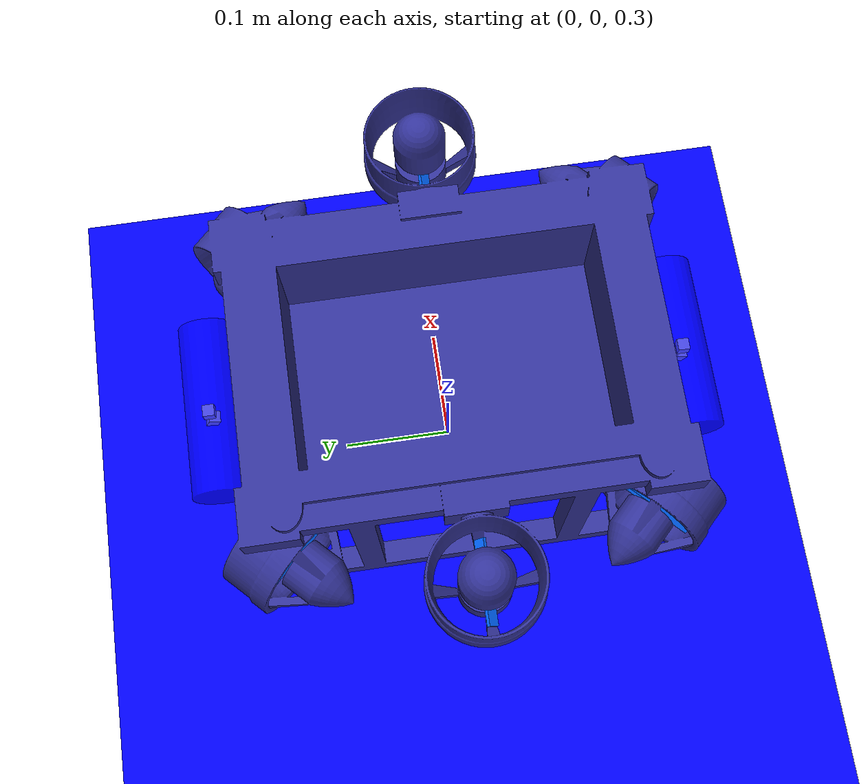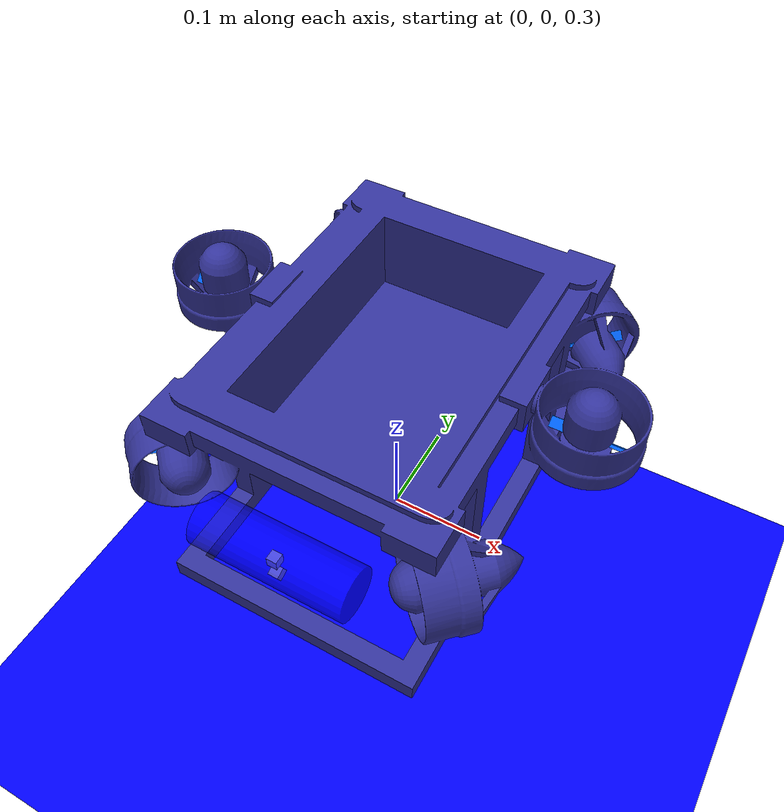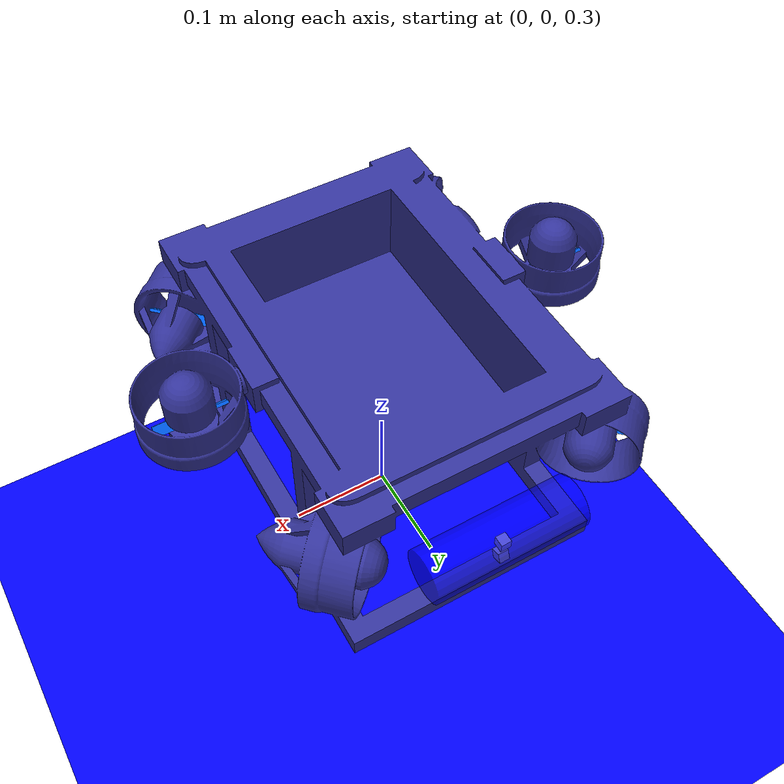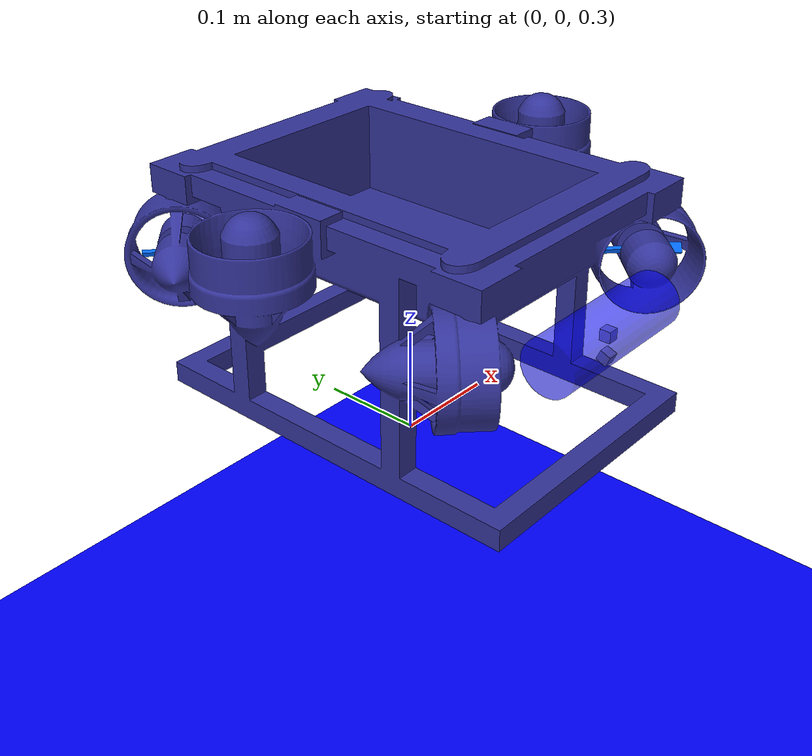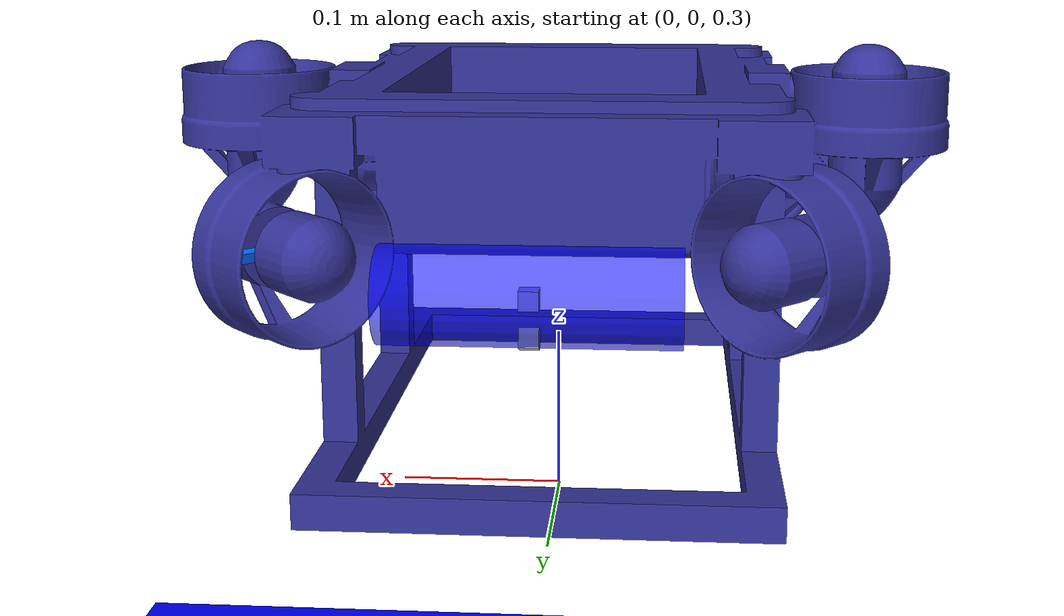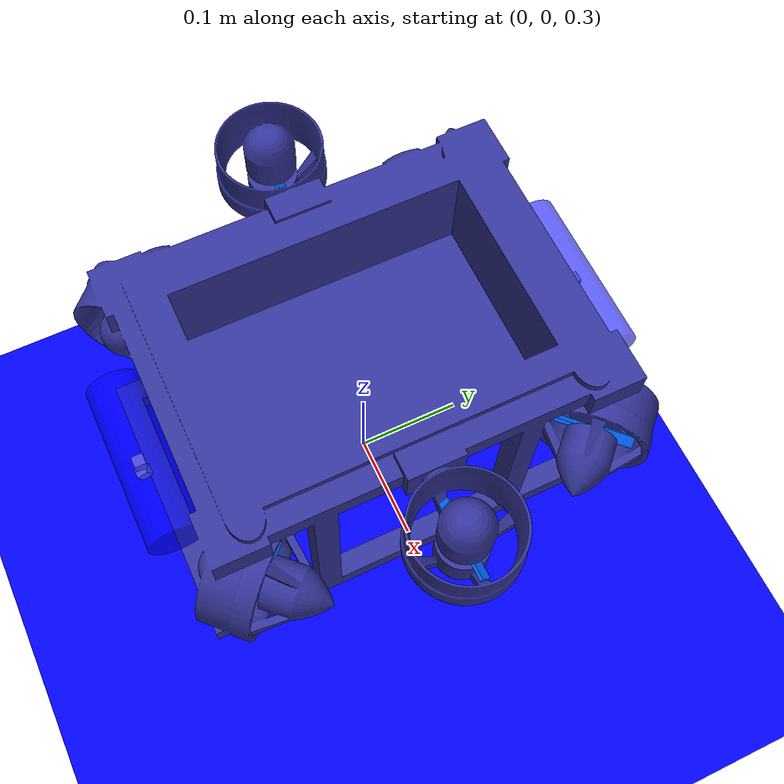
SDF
<?xml version="1.0" ?>
<sdf version="1.10">
    <!-- IMPORTANT
        Ensure that Gazebo Can find the custom plugins created in this world by typing the following command in the terminal:
        "export GZ_SIM_SYSTEM_PLUGIN_PATH=`pwd`"
    -->
    <world name="WaterwitchOceanWorld">
        <physics name="1ms" type="ignored">
            <max_step_size>0.003</max_step_size>
            <real_time_factor>1.0</real_time_factor>
        </physics>
        <plugin
            filename="gz-sim-physics-system"
            name="gz::sim::systems::Physics">
        </plugin>
        <plugin
            filename="gz-sim-sensors-system"
            name="gz::sim::systems::Sensors">
            <render_engine>ogre2</render_engine>
        </plugin>
        <plugin
            filename="gz-sim-imu-system"
            name="gz::sim::systems::Imu">
        </plugin>
        <plugin
            filename="gz-sim-user-commands-system"
            name="gz::sim::systems::UserCommands">
        </plugin>
        <plugin
            filename="gz-sim-scene-broadcaster-system"
            name="gz::sim::systems::SceneBroadcaster">
        </plugin>
        <plugin
            filename="plugins/libEER_Buoyancy.so"
            name="gz::sim::systems::EER_Buoyancy">
            <uniform_fluid_density>1000</uniform_fluid_density>
            <set_volume>
                <entity>Waterwitch::rov_body</entity>
                <!-- Displaes approcimately 6.9kg of water (extra volume displaced can be imagined as adding foam) -->
                <volume>0.006907506957916</volume>
                <center_of_volume>0 0 0.01</center_of_volume>
            </set_volume>
            <set_volume>
                <entity>Waterwitch::front_camera_enclosure</entity>
                <!-- Displaes approcimately 1.06kg of water (extra volume displaced can be imagined as adding foam) -->
                <volume>0.00106</volume>
                <center_of_volume>0 0 0</center_of_volume>
            </set_volume>
            <set_volume>
                <entity>Waterwitch::back_camera_enclosure</entity>
                <!-- Displaes approcimately 1.06kg of water (extra volume displaced can be imagined as adding foam) -->
                <volume>0.00106</volume>
                <center_of_volume>0 0 0</center_of_volume>
            </set_volume>
            <enable>Waterwitch::rov_body</enable>
            <enable>Waterwitch::front_camera_enclosure</enable>
            <enable>Waterwitch::back_camera_enclosure</enable>
        </plugin>
        <light type="directional" name="sun">
            <cast_shadows>true</cast_shadows>
            <pose>0 0 10 0 0 0</pose>
            <diffuse>0.8 0.8 0.8 1</diffuse>
            <specular>0.2 0.2 0.2 1</specular>
            <attenuation>
                <range>1000</range>
                <constant>0.9</constant>
                <linear>0.01</linear>
                <quadratic>0.001</quadratic>
            </attenuation>
            <direction>-0.5 0.1 -0.9</direction>
        </light>
        <model name='water_plane'>
            <static>true</static>
            <link name='link'>
              <visual name='water_plane'>
                <geometry>
                  <plane>
                    <size>100 100</size>
                    <normal>0 0 1</normal>
                  </plane>
                </geometry>
                <material>
                  <ambient>0 0 1 0.5</ambient>
                  <diffuse>0 0 1 0.5</diffuse>
                  <specular>0 0 1 0.5</specular>
                </material>
              </visual>
              <pose>0 0 0 0 0 0</pose>
              <inertial>
                <pose>0 0 0 0 0 0</pose>
                <mass>1</mass>
                <inertia>
                  <ixx>1</ixx>
                  <ixy>0</ixy>
                  <ixz>0</ixz>
                  <iyy>1</iyy>
                  <iyz>0</iyz>
                  <izz>1</izz>
                </inertia>
              </inertial>
              <enable_wind>false</enable_wind>
            </link>
            <pose>0 0 0 0 0 0</pose>
            <self_collide>false</self_collide>
          </model>
        <model name="ground_plane">
            <static>true</static>
            <pose>0 0 -4 0 0 0</pose>
            <link name="link">
                <collision name="collision">
                <geometry>
                    <plane>
                    <normal>0 0 1</normal>
                    </plane>
                </geometry>
                </collision>
                <visual name="visual">
                <geometry>
                    <plane>
                    <normal>0 0 1</normal>
                    <size>100 100</size>
                    </plane>
                </geometry>
                <material>
                    <ambient>0.8 0.8 0.8 1</ambient>
                    <diffuse>0.8 0.8 0.8 1</diffuse>
                    <specular>0.8 0.8 0.8 1</specular>
                </material>
                </visual>
            </link>
        </model>
        <include>
            <uri>models/Waterwitch</uri>
            <pose>0 0 0.5 0 0 0</pose>
        </include>
    </world>
</sdf>

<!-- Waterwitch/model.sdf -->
<sdf version='1.7'>
  <model name='Waterwitch'>
    <link name='rov_body'>
      <pose>0 0 -0 0 -0 0</pose>
      <inertial>
        <!-- Inertial Properties are based on Onshape Model -->
        <!-- Note that the surge and sway axes are swapped for the model,
             but that does not affect thruster input calculations. -->
        <mass>6.907506957916</mass>
        <pose>0 0 0 0 -0 0</pose>
        <inertia>
          <ixx>0.11811426857338</ixx>
          <ixy>0.000004287037566581</ixy>
          <ixz>0.00021516428040741</ixz>
          <iyy>0.1134262861325</iyy>
          <iyz>0.00013587201593205</iyz>
          <izz>0.18179128145474</izz>
        </inertia>
      </inertial>
      <self_collide>0</self_collide>
      <enable_wind>0</enable_wind>
      <kinematic>0</kinematic>
      <gravity>1</gravity>
      <visual name='rov_body_visual'>
        <pose>0 0 0 0 -0 0</pose>
        <geometry>
          <mesh>
            <uri>waterwitch_no_enclosure_cover.stl</uri>
            <scale>1 1 1</scale>
          </mesh>
        </geometry>
        <material>
        <shader type='pixel'/>
        <ambient>0.2 0.2 0.6 1</ambient>
        <diffuse>0.2 0.2 0.6 1</diffuse>
        <specular>0.2 0.2 0.6 1</specular>
        <emissive>0.2 0.2 0.6 1</emissive>
        </material>
        <transparency>0</transparency>
        <cast_shadows>0</cast_shadows>
      </visual>
      <collision name='rov_body_collision'>
        <max_contacts>10</max_contacts>
        <pose>0 0 0 0 -0 0</pose>
        <geometry>
          <mesh>
            <uri>waterwitch.stl</uri>
            <scale>1 1 1</scale>
          </mesh>
        </geometry>
      </collision>
    </link>
    <!-- For Star -->
    <link name="for_star_propeller">
      <pose>-0.135 -0.1525 -0.016 1.5708 0 0.7854</pose>
      <inertial>
        <pose>0 0 0 0 0 0</pose>
        <mass>0.002</mass>
        <inertia>
          <ixx>0.00000001960685677</ixx>
          <ixy>0</ixy>
          <ixz>0</ixz>
          <iyy>0.003</iyy>
          <iyz>0</iyz>
          <izz>0.003</izz>
        </inertia>
      </inertial>
      <collision name='propeller_collision'>
        <max_contacts>10</max_contacts>
        <pose>0 0 0 0 0 0</pose>
        <geometry>
          <mesh>
            <uri>propeller.stl</uri>
            <scale>1 1 1</scale>
          </mesh>
        </geometry>
      </collision>
      <visual name='propeller_visual'>
        <pose>0 0 0 0 -0 0</pose>
        <geometry>
          <mesh>
            <uri>propeller.stl</uri>
            <scale>1 1 1</scale>
          </mesh>
        </geometry>
        <material>
        <shader type='pixel'/>
        <ambient>0 0.4 1 1</ambient>
        <diffuse>0 0.4 1 1</diffuse>
        <specular>0 0.4 1 1</specular>
        <emissive>0 0.4 1 1</emissive>
        </material>
        <transparency>0</transparency>
        <cast_shadows>0</cast_shadows>
      </visual>
    </link>
    <joint name='for_star_propeller_joint' type='revolute'>
      <parent>rov_body</parent>
      <child>for_star_propeller</child>
      <pose relative_to="for_star_propeller">0 0 0 0 0 0</pose>
      <axis>
        <xyz>0 0 1</xyz>
      </axis>
    </joint>
    <!-- For Port -->
    <link name="for_port_propeller">
      <pose>0.135 -0.1525 -0.016 1.5708 0 -0.7854</pose>
      <inertial>
        <pose>0 0 0 0 0 0</pose>
        <mass>0.002</mass>
        <inertia>
          <ixx>0.00000001960685677</ixx>
          <ixy>0</ixy>
          <ixz>0</ixz>
          <iyy>0.003</iyy>
          <iyz>0</iyz>
          <izz>0.003</izz>
        </inertia>
      </inertial>
      <collision name='propeller_collision'>
        <max_contacts>10</max_contacts>
        <pose>0 0 0 0 0 0</pose>
        <geometry>
          <mesh>
            <uri>propeller.stl</uri>
            <scale>1 1 1</scale>
          </mesh>
        </geometry>
      </collision>
      <visual name='propeller_visual'>
        <pose>0 0 0 0 -0 0</pose>
        <geometry>
          <mesh>
            <uri>propeller.stl</uri>
            <scale>1 1 1</scale>
          </mesh>
        </geometry>
        <material>
        <shader type='pixel'/>
        <ambient>0 0.4 1 1</ambient>
        <diffuse>0 0.4 1 1</diffuse>
        <specular>0 0.4 1 1</specular>
        <emissive>0 0.4 1 1</emissive>
        </material>
        <transparency>0</transparency>
        <cast_shadows>0</cast_shadows>
      </visual>
    </link>
    <joint name='for_port_propeller_joint' type='revolute'>
      <parent>rov_body</parent>
      <child>for_port_propeller</child>
      <pose relative_to="for_port_propeller">0 0 0 0 0 0</pose>
      <axis>
        <xyz>0 0 1</xyz>
      </axis>
    </joint>
    <!-- Aft Star -->
    <link name="aft_star_propeller">
      <pose>-0.135 0.147 -0.016 -1.5708 0 -0.7854</pose>
      <inertial>
        <pose>0 0 0 0 0 0</pose>
        <mass>0.002</mass>
        <inertia>
          <ixx>0.00000001960685677</ixx>
          <ixy>0</ixy>
          <ixz>0</ixz>
          <iyy>0.003</iyy>
          <iyz>0</iyz>
          <izz>0.003</izz>
        </inertia>
      </inertial>
      <collision name='propeller_collision'>
        <max_contacts>10</max_contacts>
        <pose>0 0 0 0 0 0</pose>
        <geometry>
          <mesh>
            <uri>propeller.stl</uri>
            <scale>1 1 1</scale>
          </mesh>
        </geometry>
      </collision>
      <visual name='propeller_visual'>
        <pose>0 0 0 0 -0 0</pose>
        <geometry>
          <mesh>
            <uri>propeller.stl</uri>
            <scale>1 1 1</scale>
          </mesh>
        </geometry>
        <material>
        <shader type='pixel'/>
        <ambient>0 0.4 1 1</ambient>
        <diffuse>0 0.4 1 1</diffuse>
        <specular>0 0.4 1 1</specular>
        <emissive>0 0.4 1 1</emissive>
        </material>
        <transparency>0</transparency>
        <cast_shadows>0</cast_shadows>
      </visual>
    </link>
    <joint name='aft_star_propeller_joint' type='revolute'>
      <parent>rov_body</parent>
      <child>aft_star_propeller</child>
      <pose relative_to="aft_star_propeller">0 0 0 0 0 0</pose>
      <axis>
        <xyz>0 0 1</xyz>
      </axis>
    </joint>
    <!-- Aft Port -->
    <link name="aft_port_propeller">
      <pose>0.135 0.147 -0.016 -1.5708 0 0.7854</pose>
      <inertial>
        <pose>0 0 0 0 0 0</pose>
        <mass>0.002</mass>
        <inertia>
          <ixx>0.00000001960685677</ixx>
          <ixy>0</ixy>
          <ixz>0</ixz>
          <iyy>0.003</iyy>
          <iyz>0</iyz>
          <izz>0.003</izz>
        </inertia>
      </inertial>
      <collision name='propeller_collision'>
        <max_contacts>10</max_contacts>
        <pose>0 0 0 0 0 0</pose>
        <geometry>
          <mesh>
            <uri>propeller.stl</uri>
            <scale>1 1 1</scale>
          </mesh>
        </geometry>
      </collision>
      <visual name='propeller_visual'>
        <pose>0 0 0 0 -0 0</pose>
        <geometry>
          <mesh>
            <uri>propeller.stl</uri>
            <scale>1 1 1</scale>
          </mesh>
        </geometry>
        <material>
        <shader type='pixel'/>
        <ambient>0 0.4 1 1</ambient>
        <diffuse>0 0.4 1 1</diffuse>
        <specular>0 0.4 1 1</specular>
        <emissive>0 0.4 1 1</emissive>
        </material>
        <transparency>0</transparency>
        <cast_shadows>0</cast_shadows>
      </visual>
    </link>
    <joint name='aft_port_propeller_joint' type='revolute'>
      <parent>rov_body</parent>
      <child>aft_port_propeller</child>
      <pose relative_to="aft_port_propeller">0 0 0 0 0 0</pose>
      <axis>
        <xyz>0 0 1</xyz>
      </axis>
    </joint>
    <!-- Star Top -->
    <link name="star_top_propeller">
      <pose>-0.185 -0.003125 0.030625 0 0 0</pose>
      <inertial>
        <pose>0 0 0 0 0 0</pose>
        <mass>0.002</mass>
        <inertia>
          <ixx>0.00000001960685677</ixx>
          <ixy>0</ixy>
          <ixz>0</ixz>
          <iyy>0.003</iyy>
          <iyz>0</iyz>
          <izz>0.003</izz>
        </inertia>
      </inertial>
      <collision name='propeller_collision'>
        <max_contacts>10</max_contacts>
        <pose>0 0 0 0 0 0</pose>
        <geometry>
          <mesh>
            <uri>propeller.stl</uri>
            <scale>1 1 1</scale>
          </mesh>
        </geometry>
      </collision>
      <visual name='propeller_visual'>
        <pose>0 0 0 0 -0 0</pose>
        <geometry>
          <mesh>
            <uri>propeller.stl</uri>
            <scale>1 1 1</scale>
          </mesh>
        </geometry>
        <material>
        <shader type='pixel'/>
        <ambient>0 0.4 1 1</ambient>
        <diffuse>0 0.4 1 1</diffuse>
        <specular>0 0.4 1 1</specular>
        <emissive>0 0.4 1 1</emissive>
        </material>
        <transparency>0</transparency>
        <cast_shadows>0</cast_shadows>
      </visual>
    </link>
    <joint name='star_top_propeller_joint' type='revolute'>
      <parent>rov_body</parent>
      <child>star_top_propeller</child>
      <pose relative_to="star_top_propeller">0 0 0 0 0 0</pose>
      <axis>
        <xyz>0 0 1</xyz>
      </axis>
    </joint>
    <!-- Port Top -->
    <link name="port_top_propeller">
      <pose>0.185 -0.003125 0.030625 0 0 0</pose>
      <inertial>
        <pose>0 0 0 0 0 0</pose>
        <mass>0.002</mass>
        <inertia>
          <ixx>0.00000001960685677</ixx>
          <ixy>0</ixy>
          <ixz>0</ixz>
          <iyy>0.003</iyy>
          <iyz>0</iyz>
          <izz>0.003</izz>
        </inertia>
      </inertial>
      <collision name='propeller_collision'>
        <max_contacts>10</max_contacts>
        <pose>0 0 0 0 0 0</pose>
        <geometry>
          <mesh>
            <uri>propeller.stl</uri>
            <scale>1 1 1</scale>
          </mesh>
        </geometry>
      </collision>
      <visual name='propeller_visual'>
        <pose>0 0 0 0 -0 0</pose>
        <geometry>
          <mesh>
            <uri>propeller.stl</uri>
            <scale>1 1 1</scale>
          </mesh>
        </geometry>
        <material>
        <shader type='pixel'/>
        <ambient>0 0.4 1 1</ambient>
        <diffuse>0 0.4 1 1</diffuse>
        <specular>0 0.4 1 1</specular>
        <emissive>0 0.4 1 1</emissive>
        </material>
        <transparency>0</transparency>
        <cast_shadows>0</cast_shadows>
      </visual>
    </link>
    <joint name='port_top_propeller_joint' type='revolute'>
      <parent>rov_body</parent>
      <child>port_top_propeller</child>
      <pose relative_to="port_top_propeller">0 0 0 0 0 0</pose>
      <axis>
        <xyz>0 0 1</xyz>
      </axis>
    </joint>
    <!-- Front Camera Enclosure -->
    <link name="front_camera_enclosure">
      <pose>0 -0.2 -0.025 0 1.5707963 0</pose>
      <inertial>
        <pose>0 0 0 0 0 0</pose>
        <mass>1.06</mass>
      </inertial>
      <collision name="front_camera_enclosure_collision">
        <geometry>
          <cylinder>
            <radius>0.025</radius>
            <length>0.150</length>
          </cylinder>
        </geometry>
      </collision>
      <visual name="front_camera_enclosure_visual">
        <geometry>
          <cylinder>
            <radius>0.025</radius>
            <length>0.150</length>
          </cylinder>
        </geometry>
        <material>
            <ambient>0 0 1 1</ambient>
            <diffuse>0 0 1 1</diffuse>
            <specular>0 0 1 1</specular>
            <emissive>0 0 0 1</emissive>
        </material>
        <transparency>0.4</transparency>
        <cast_shadows>0</cast_shadows>
      </visual>
    </link>
    <joint name="front_camera_enclosure_joint" type="fixed">
      <parent>rov_body</parent>
      <child>front_camera_enclosure</child>
      <pose>0 0 0 0 0 0</pose>
    </joint>
    <!-- Front Forward Camera -->
    <link name="front_camera_forward">
      <pose relative_to="front_camera_enclosure">0 -0.005 0 0 0 0</pose>
      <inertial>
        <mass>0.001</mass>
      </inertial>
      <collision name="front_camera_forward_collision">
      <geometry>
          <box>
          <size>0.01 0.01 0.01</size>
          </box>
      </geometry>
      </collision>
      <visual name="front_camera_forward_visual">
        <geometry>
            <box>
            <size>0.01 0.01 0.01</size>
            </box>
        </geometry>
        <cast_shadows>0</cast_shadows>
      </visual>
      <sensor name="front_camera_sensor" type="camera">
        <pose relative_to="front_camera_forward">0 0 0 1.5708 0 -1.5708</pose>
        <camera>
          <horizontal_fov>2.0944</horizontal_fov>
          <vertical_fov>1.171</vertical_fov>
          <image>
            <width>320</width>
            <height>240</height>
          </image>
          <clip>
            <near>0.001</near>
            <far>100</far>
          </clip>
        </camera>
        <always_on>1</always_on>
        <update_rate>30</update_rate>
        <visualize>true</visualize>
        <topic>front_camera_forward</topic>
      </sensor>
    </link>
    <joint name="front_camera_forward_joint" type="revolute">
      <parent>front_camera_enclosure</parent>
      <child>front_camera_forward</child>
      <pose relative_to="front_camera_enclosure">0 0 0 0 0 0</pose>
      <axis>
        <xyz>0 0 1</xyz>
      </axis>
    </joint>
    <!-- Front Downtilt Camera -->
    <link name="front_camera_downtilt">
      <pose relative_to="front_camera_enclosure">0.02 -0.005 0 0 0 -1.16937</pose>
      <inertial>
        <mass>0.001</mass>
      </inertial>
      <collision name="front_camera_downtilt_collision">
      <geometry>
          <box>
          <size>0.01 0.01 0.01</size>
          </box>
      </geometry>
      </collision>
      <visual name="front_camera_downtilt_visual">
        <geometry>
            <box>
            <size>0.01 0.01 0.01</size>
            </box>
        </geometry>
        <cast_shadows>0</cast_shadows>
      </visual>
      <sensor name="front_camera_sensor" type="camera">
        <pose relative_to="front_camera_downtilt">0 0 0 1.5708 0 0</pose>
        <camera>
          <horizontal_fov>2.0944</horizontal_fov>
          <vertical_fov>1.171</vertical_fov>
          <image>
            <width>320</width>
            <height>240</height>
          </image>
          <clip>
            <near>0.001</near>
            <far>100</far>
          </clip>
        </camera>
        <always_on>1</always_on>
        <update_rate>30</update_rate>
        <visualize>true</visualize>
        <topic>front_camera_downtilt</topic>
      </sensor>
    </link>
    <joint name="front_camera_downtilt_joint" type="revolute">
      <parent>front_camera_enclosure</parent>
      <child>front_camera_downtilt</child>
      <pose relative_to="front_camera_enclosure">0 0 0 0 0 0</pose>
      <axis>
        <xyz>0 0 1</xyz>
      </axis>
    </joint>
    <!-- Back Camera Enclosure -->
    <link name="back_camera_enclosure">
      <pose>0 0.2 -0.025 0 1.5707963 0</pose>
      <inertial>
        <pose>0 0 0 0 0 0</pose>
        <mass>1.06</mass>
      </inertial>
      <collision name="back_camera_enclosure_collision">
        <geometry>
          <cylinder>
            <radius>0.025</radius>
            <length>0.150</length>
          </cylinder>
        </geometry>
      </collision>
      <visual name="back_camera_enclosure_visual">
        <geometry>
          <cylinder>
            <radius>0.025</radius>
            <length>0.150</length>
          </cylinder>
        </geometry>
        <material>
            <ambient>0 0 1 1</ambient>
            <diffuse>0 0 1 1</diffuse>
            <specular>0 0 1 1</specular>
            <emissive>0 0 0 1</emissive>
        </material>
        <transparency>0.4</transparency>
        <cast_shadows>0</cast_shadows>
      </visual>
    </link>
    <joint name="back_camera_enclosure_joint" type="fixed">
      <parent>rov_body</parent>
      <child>back_camera_enclosure</child>
      <pose>0 0 0 0 0 0</pose>
    </joint>
    <!-- Back Forward Camera -->
    <link name="back_camera_forward">
      <pose relative_to="back_camera_enclosure">0 0.005 0 0 0 0</pose>
      <inertial>
        <mass>0.001</mass>
      </inertial>
      <collision name="back_camera_forward_collision">
      <geometry>
          <box>
          <size>0.01 0.01 0.01</size>
          </box>
      </geometry>
      </collision>
      <visual name="back_camera_forward_visual">
        <geometry>
            <box>
            <size>0.01 0.01 0.01</size>
            </box>
        </geometry>
        <cast_shadows>0</cast_shadows>
      </visual>
      <sensor name="back_camera_sensor" type="camera">
        <pose relative_to="back_camera_forward">0 0 0 -1.5708 0 1.5708</pose>
        <camera>
          <horizontal_fov>2.0944</horizontal_fov>
          <vertical_fov>1.171</vertical_fov>
          <image>
            <width>320</width>
            <height>240</height>
          </image>
          <clip>
            <near>0.001</near>
            <far>100</far>
          </clip>
        </camera>
        <always_on>1</always_on>
        <update_rate>30</update_rate>
        <visualize>true</visualize>
        <topic>back_camera_forward</topic>
      </sensor>
    </link>
    <joint name="back_camera_forward_joint" type="revolute">
      <parent>back_camera_enclosure</parent>
      <child>back_camera_forward</child>
      <pose relative_to="back_camera_enclosure">0 0 0 0 0 0</pose>
      <axis>
        <xyz>0 0 1</xyz>
      </axis>
    </joint>
    <!-- Back Downtilt Camera -->
    <link name="back_camera_downtilt">
      <pose relative_to="back_camera_enclosure">0.02 0.005 0 0 0 -1.16937</pose>
      <inertial>
        <mass>0.001</mass>
      </inertial>
      <collision name="back_camera_downtilt_collision">
      <geometry>
          <box>
          <size>0.01 0.01 0.01</size>
          </box>
      </geometry>
      </collision>
      <visual name="back_camera_downtilt_visual">
        <geometry>
            <box>
            <size>0.01 0.01 0.01</size>
            </box>
        </geometry>
        <cast_shadows>0</cast_shadows>
      </visual>
      <sensor name="back_camera_sensor" type="camera">
        <pose relative_to="back_camera_downtilt">0 0 0 -1.5708 0 1.5708</pose>
        <camera>
          <horizontal_fov>2.0944</horizontal_fov>
          <vertical_fov>1.171</vertical_fov>
          <image>
            <width>320</width>
            <height>240</height>
          </image>
          <clip>
            <near>0.001</near>
            <far>100</far>
          </clip>
        </camera>
        <always_on>1</always_on>
        <update_rate>30</update_rate>
        <visualize>true</visualize>
        <topic>back_camera_downtilt</topic>
      </sensor>
    </link>
    <joint name="back_camera_downtilt_joint" type="revolute">
      <parent>back_camera_enclosure</parent>
      <child>back_camera_downtilt</child>
      <pose relative_to="back_camera_enclosure">0 0 0 0 0 0</pose>
      <axis>
        <xyz>0 0 1</xyz>
      </axis>
    </joint>
    <!-- Hydrodynamics -->
    <!-- Note that the surge and sway axes are swapped for the model,
          but that does not affect thruster input calculations since thruster
          control topics are renamed approperiately. -->
    <plugin
        filename="plugins/libEER_Hydrodynamics.so"
        name="gz::sim::systems::EER_Hydrodynamics">
        <link_name>rov_body</link_name>
        <water_density>1000</water_density>
        <xDotU>1.32246275</xDotU>
        <yDotV>1.04396026</yDotV>
        <zDotW>6.64814797</zDotW> <!--Should be 27.12577546 but that makes it crash-->
        <kDotP>0.03548512</kDotP>
        <mDotQ>0.02818614</mDotQ>
        <nDotR>0.01814365</nDotR>
        <xUabsU>-40</xUabsU>
        <xU>-30</xU>
        <yVabsV>-40</yVabsV>
        <yV>-25</yV>
        <zWabsW>-50</zWabsW>
        <zW>-50</zW>
        <kPabsP>-20</kPabsP>
        <kP>-20</kP>
        <mQabsQ>-125</mQabsQ>
        <mQ>-50</mQ>
        <nRabsR>-20</nRabsR>
        <nR>-20</nR>
    </plugin>
    <!-- Thrusters -->
    <plugin
        filename="plugins/libEER_Thruster.so"
        name="gz::sim::systems::EER_Thruster">
        <namespace>waterwitch</namespace>
        <joint_name>for_star_propeller_joint</joint_name>
        <use_esc_cmd>true</use_esc_cmd>
        <fluid_density>1000</fluid_density>
        <topic>for_star</topic>
        <propeller_diameter>0.076</propeller_diameter>
    </plugin>
    <plugin
        filename="plugins/libEER_Thruster.so"
        name="gz::sim::systems::EER_Thruster">
        <namespace>waterwitch</namespace>
        <joint_name>for_port_propeller_joint</joint_name>
        <use_esc_cmd>true</use_esc_cmd>
        <fluid_density>1000</fluid_density>
        <topic>for_port</topic>
        <propeller_diameter>0.076</propeller_diameter>
    </plugin>
    <plugin
        filename="plugins/libEER_Thruster.so"
        name="gz::sim::systems::EER_Thruster">
        <namespace>waterwitch</namespace>
        <joint_name>aft_star_propeller_joint</joint_name>
        <use_esc_cmd>true</use_esc_cmd>
        <fluid_density>1000</fluid_density>
        <topic>aft_star</topic>
        <propeller_diameter>0.076</propeller_diameter>
    </plugin>
    <plugin
        filename="plugins/libEER_Thruster.so"
        name="gz::sim::systems::EER_Thruster">
        <namespace>waterwitch</namespace>
        <joint_name>aft_port_propeller_joint</joint_name>
        <use_esc_cmd>true</use_esc_cmd>
        <fluid_density>1000</fluid_density>
        <topic>aft_port</topic>
        <propeller_diameter>0.076</propeller_diameter>
    </plugin>
    <plugin
        filename="plugins/libEER_Thruster.so"
        name="gz::sim::systems::EER_Thruster">
        <namespace>waterwitch</namespace>
        <joint_name>star_top_propeller_joint</joint_name>
        <use_esc_cmd>true</use_esc_cmd>
        <fluid_density>1000</fluid_density>
        <topic>star_top</topic>
        <propeller_diameter>0.076</propeller_diameter>
    </plugin>
    <plugin
        filename="plugins/libEER_Thruster.so"
        name="gz::sim::systems::EER_Thruster">
        <namespace>waterwitch</namespace>
        <joint_name>port_top_propeller_joint</joint_name>
        <use_esc_cmd>true</use_esc_cmd>
        <fluid_density>1000</fluid_density>
        <topic>port_top</topic>
        <propeller_diameter>0.076</propeller_diameter>
    </plugin>
    <!-- Front Servo (actually a plugin for each camera) -->
    <plugin
        filename="plugins/libEER_Servo.so"
        name="gz::sim::systems::Servo">
          <joint>front_camera_forward_joint</joint>
          <topic>front_camera_forward_servo</topic>
    </plugin>
    <plugin
        filename="plugins/libEER_Servo.so"
        name="gz::sim::systems::Servo">
          <joint>front_camera_downtilt_joint</joint>
          <topic>front_camera_downtilt_servo</topic>
    </plugin>
    <plugin
        filename="plugins/libEER_Servo.so"
        name="gz::sim::systems::Servo">
          <joint>back_camera_forward_joint</joint>
          <topic>back_camera_forward_servo</topic>
    </plugin>
    <plugin
        filename="plugins/libEER_Servo.so"
        name="gz::sim::systems::Servo">
          <joint>back_camera_downtilt_joint</joint>
          <topic>back_camera_downtilt_servo</topic>
    </plugin>
    <static>0</static>
    <self_collide>0</self_collide>
    <allow_auto_disable>1</allow_auto_disable>
  </model>
</sdf>
